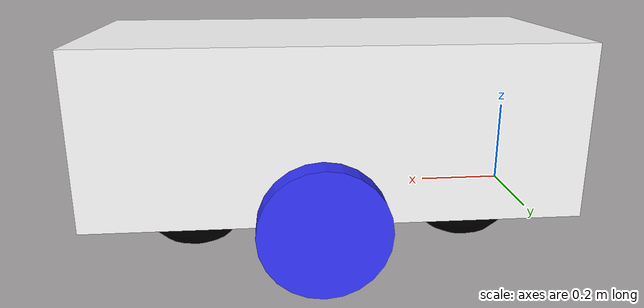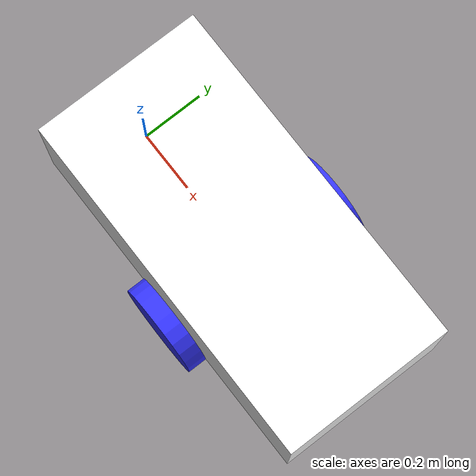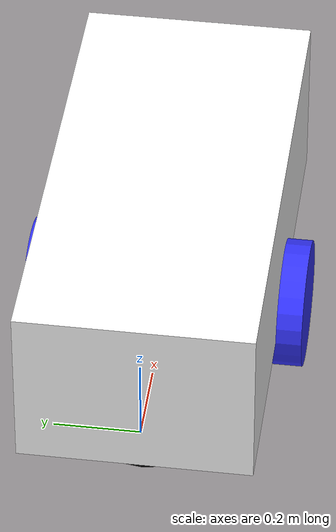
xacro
<?xml version="1.0"?>
<robot xmlns:xacro="http://www.ros.org/wiki/xacro" >

    <xacro:include filename="inertial_macros.xacro"/>

    <material name="white">
        <color rgba="1 1 1 1" />
    </material>

    <material name="orange">
        <color rgba="1 0.3 0.1 1"/>
    </material>

    <material name="blue">
        <color rgba="0.2 0.2 1 1"/>
    </material>

    <material name="black">
        <color rgba="0 0 0 1"/>
    </material>
 <material name="red">
        <color rgba="1 0 0 1"/>
    </material>
    <!-- BASE LINK -->

    <link name="base_link">

    </link>

    <!-- BASE_FOOTPRINT LINK -->

    <joint name="base_footprint_joint" type="fixed">
        <parent link="base_link"/>
        <child link="base_footprint"/>
        <origin xyz="0 0 0" rpy="0 0 0"/>
    </joint>

    <link name="base_footprint">
    </link>

    <!-- CHASSIS LINK -->

    <joint name="chassis_joint" type="fixed">
        <parent link="base_link"/>
        <child link="chassis"/>
        <origin xyz="-0.1 0 0"/>
    </joint>

    <link name="chassis">
        <visual>
            <origin xyz="0.56 0 0.2"/>
            <geometry>
                <box size="1.13 0.54 0.40"/>
            </geometry>
            <material name="white"/>
        </visual>
        <collision>
            <origin xyz="0.56 0 0.2"/>
            <geometry>
                <box size="1.13 0.54 0.4"/>
            </geometry>
        </collision>
        <xacro:inertial_box mass="70" x="1.13" y="0.54" z="0.4">
            <origin xyz="0.56 0 0.2" rpy="0 0 0"/>
        </xacro:inertial_box>
    </link>

    <gazebo reference="chassis">
        <material>Gazebo/White</material>
    </gazebo>

    <!-- LEFT WHEEL LINK -->

    <joint name="left_wheel_joint" type="continuous">
        <parent link="base_link"/>
        <child link="left_wheel"/>
        <origin xyz="0.49 0.295 0" rpy="-${pi/2} 0 0" />
        <axis xyz="0 0 1"/>
    </joint>

    <link name="left_wheel">
        <visual>
            <geometry>
                <cylinder radius="0.15" length="0.07"/>
            </geometry>
            <material name="blue"/>
        </visual>
        <collision>
            <geometry>
                <cylinder radius="0.15" length="0.07"/>
            </geometry>
        </collision>
        <xacro:inertial_cylinder mass="10" length="0.07" radius="0.15">
            <origin xyz="0 0 0" rpy="0 0 0"/>
        </xacro:inertial_cylinder>
    </link>

    <gazebo reference="left_wheel">
        <material>Gazebo/Blue</material>
    </gazebo>

    <!-- RIGHT WHEEL LINK -->

    <joint name="right_wheel_joint" type="continuous">
        <parent link="base_link"/>
        <child link="right_wheel"/>
        <origin xyz="0.49 -0.295 0" rpy="${pi/2} 0 0" />
        <axis xyz="0 0 -1"/>
    </joint>

    <link name="right_wheel">
        <visual>
            <geometry>
                <cylinder radius="0.15" length="0.07"/>
            </geometry>
            <material name="blue"/>
        </visual>
        <collision>
            <geometry>
                <cylinder radius="0.15" length="0.07"/>
            </geometry>
        </collision>
        <xacro:inertial_cylinder mass="10" length="0.07" radius="0.15">
            <origin xyz="0 0 0" rpy="0 0 0"/>
        </xacro:inertial_cylinder>
    </link>

    <gazebo reference="right_wheel">
        <material>Gazebo/Blue</material>
    </gazebo>

    <!-- CASTER WHEEL LINK FRONT-->

    <joint name="caster_wheel_joint" type="fixed">
        <parent link="chassis"/>
        <child link="caster_wheel"/>
        <origin xyz="0.20 0 0"/>
    </joint>

    <link name="caster_wheel">
        <visual>
            <geometry>
                <sphere radius="0.15"/>
            </geometry>
            <material name="black"/>
        </visual>
        <collision>
            <geometry>
                <sphere radius="0.15"/>
            </geometry>
        </collision>
        <xacro:inertial_sphere mass="5" radius="0.15">
            <origin xyz="0 0 0" rpy="0 0 0"/>
        </xacro:inertial_sphere>
    </link>

    <gazebo reference="caster_wheel">
        <material>Gazebo/Black</material>
        <mu1 value="0.001"/>
        <mu2 value="0.001"/>
    </gazebo>
        <!-- CASTER WHEEL LINK BACK-->
<joint name="caster_wheel_joint_back" type="fixed">
        <parent link="chassis"/>
        <child link="caster_wheel_back"/>
        <origin xyz="0.90 0 0"/>
    </joint>

    <link name="caster_wheel_back">
        <visual>
            <geometry>
                <sphere radius="0.15"/>
            </geometry>
            <material name="black"/>
        </visual>
        <collision>
            <geometry>
                <sphere radius="0.15"/>
            </geometry>
        </collision>
        <xacro:inertial_sphere mass="5" radius="0.15">
            <origin xyz="0 0 0" rpy="0 0 0"/>
        </xacro:inertial_sphere>
    </link>

    <gazebo reference="caster_wheel_back">
        <material>Gazebo/Black</material>
        <mu1 value="0.001"/>
        <mu2 value="0.001"/>
    </gazebo>

</robot>
